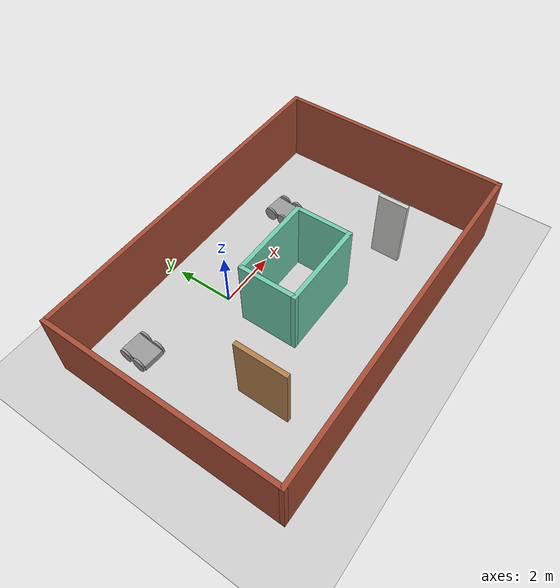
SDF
<sdf version="1.7">
 <world name="default">
  <plugin name="hello" filename="libhello.so"/>
  <light name="sun" type="directional">
   <pose>0 0 10 0 -0 0</pose>
   <diffuse>0.8 0.8 0.8 1</diffuse>
   <specular>0.2 0.2 0.2 1</specular>
   <attenuation>
    <range>1000</range>
    <constant>0.9</constant>
    <linear>0.01</linear>
    <quadratic>0.001</quadratic>
   </attenuation>
   <direction>-0.5 0.1 -0.9</direction>
   <spot><inner_angle>0</inner_angle><outer_angle>0</outer_angle><falloff>0</falloff></spot>
  </light>
  <model name="ground_plane">
   <static>1</static>
   <link name="link">
    <collision name="collision">
     <geometry><plane><normal>0 0 1</normal><size>100 100</size></plane></geometry>
     <surface>
      <contact><collide_bitmask>65535</collide_bitmask></contact>
      <friction><ode><mu>100</mu><mu2>50</mu2></ode></friction>
     </surface>
    </collision>
    <visual name="visual">
     <cast_shadows>0</cast_shadows>
     <geometry><plane><normal>0 0 1</normal><size>100 100</size></plane></geometry>
     <material>
      <script><uri>file://media/materials/scripts/gazebo.material</uri><name>Gazebo/Grey</name></script>
     </material>
    </visual>
   </link>
  </model>
  <gravity>0 0 -9.8</gravity>
  <magnetic_field>6e-06 2.3e-05 -4.2e-05</magnetic_field>
  <atmosphere type="adiabatic"/>
  <physics type="ode">
   <max_step_size>0.001</max_step_size>
   <real_time_factor>1</real_time_factor>
   <real_time_update_rate>1000</real_time_update_rate>
  </physics>
  <scene><ambient>0.4 0.4 0.4 1</ambient><background>0.7 0.7 0.7 1</background><shadows>1</shadows></scene>
  <spherical_coordinates>
   <surface_model>EARTH_WGS84</surface_model>
   <latitude_deg>0</latitude_deg>
   <longitude_deg>0</longitude_deg>
   <elevation>0</elevation>
   <heading_deg>0</heading_deg>
  </spherical_coordinates>
  <model name="Building">
   <link name="Wall_0">
    <pose>-0.02 -0.5525 0 0 -0 0</pose>
    <visual name="Wall_0_Visual">
     <pose>0 0 1.25 0 -0 0</pose>
     <geometry><box><size>3 0.15 2.5</size></box></geometry>
     <material>
      <script><uri>file://media/materials/scripts/gazebo.material</uri><name>Gazebo/Grey</name></script>
      <ambient>0.435294 0.796078 0.67451 1</ambient>
      <shader type="pixel"/>
     </material>
     <meta><layer>0</layer></meta>
    </visual>
    <collision name="Wall_0_Collision">
     <pose>0 0 1.25 0 -0 0</pose>
     <geometry><box><size>3 0.15 2.5</size></box></geometry>
     <surface>
      <friction>
       <ode><mu>1</mu><mu2>1</mu2><fdir1>0 0 0</fdir1><slip1>0</slip1><slip2>0</slip2></ode>
       <torsional>
        <coefficient>1</coefficient>
        <patch_radius>0</patch_radius>
        <surface_radius>0</surface_radius>
        <use_patch_radius>1</use_patch_radius>
        <ode><slip>0</slip></ode>
       </torsional>
      </friction>
      <bounce><restitution_coefficient>0</restitution_coefficient><threshold>1e+06</threshold></bounce>
      <contact>
       <collide_without_contact>0</collide_without_contact>
       <collide_without_contact_bitmask>1</collide_without_contact_bitmask>
       <collide_bitmask>1</collide_bitmask>
       <ode>
        <soft_cfm>0</soft_cfm>
        <soft_erp>0.2</soft_erp>
        <kp>1e+13</kp>
        <kd>1</kd>
        <max_vel>0.01</max_vel>
        <min_depth>0</min_depth>
       </ode>
       <bullet>
        <split_impulse>1</split_impulse>
        <split_impulse_penetration_threshold>-0.01</split_impulse_penetration_threshold>
        <soft_cfm>0</soft_cfm>
        <soft_erp>0.2</soft_erp>
        <kp>1e+13</kp>
        <kd>1</kd>
       </bullet>
      </contact>
     </surface>
    </collision>
   </link>
   <link name="Wall_1">
    <pose>1.405 -1.4775 0 0 0 -1.5708</pose>
    <visual name="Wall_1_Visual">
     <pose>0 0 1.25 0 -0 0</pose>
     <geometry><box><size>2 0.15 2.5</size></box></geometry>
     <material>
      <script><uri>file://media/materials/scripts/gazebo.material</uri><name>Gazebo/Grey</name></script>
      <ambient>0.435294 0.796078 0.67451 1</ambient>
      <shader type="pixel"/>
     </material>
     <meta><layer>0</layer></meta>
    </visual>
    <collision name="Wall_1_Collision">
     <pose>0 0 1.25 0 -0 0</pose>
     <geometry><box><size>2 0.15 2.5</size></box></geometry>
     <surface>
      <friction>
       <ode><mu>1</mu><mu2>1</mu2><fdir1>0 0 0</fdir1><slip1>0</slip1><slip2>0</slip2></ode>
       <torsional>
        <coefficient>1</coefficient>
        <patch_radius>0</patch_radius>
        <surface_radius>0</surface_radius>
        <use_patch_radius>1</use_patch_radius>
        <ode><slip>0</slip></ode>
       </torsional>
      </friction>
      <bounce><restitution_coefficient>0</restitution_coefficient><threshold>1e+06</threshold></bounce>
      <contact>
       <collide_without_contact>0</collide_without_contact>
       <collide_without_contact_bitmask>1</collide_without_contact_bitmask>
       <collide_bitmask>1</collide_bitmask>
       <ode>
        <soft_cfm>0</soft_cfm>
        <soft_erp>0.2</soft_erp>
        <kp>1e+13</kp>
        <kd>1</kd>
        <max_vel>0.01</max_vel>
        <min_depth>0</min_depth>
       </ode>
       <bullet>
        <split_impulse>1</split_impulse>
        <split_impulse_penetration_threshold>-0.01</split_impulse_penetration_threshold>
        <soft_cfm>0</soft_cfm>
        <soft_erp>0.2</soft_erp>
        <kp>1e+13</kp>
        <kd>1</kd>
       </bullet>
      </contact>
     </surface>
    </collision>
   </link>
   <link name="Wall_16">
    <pose>-3.555 -2.8225 0 0 0 -1.5708</pose>
    <visual name="Wall_16_Visual">
     <pose>0 0 1.25 0 -0 0</pose>
     <geometry><box><size>1.75 0.15 2.5</size></box></geometry>
     <material>
      <script><uri>file://media/materials/scripts/gazebo.material</uri><name>Gazebo/Wood</name></script>
      <ambient>1 1 1 1</ambient>
      <shader type="pixel"/>
     </material>
     <meta><layer>0</layer></meta>
    </visual>
    <collision name="Wall_16_Collision">
     <pose>0 0 1.25 0 -0 0</pose>
     <geometry><box><size>1.75 0.15 2.5</size></box></geometry>
     <surface>
      <friction>
       <ode><mu>1</mu><mu2>1</mu2><fdir1>0 0 0</fdir1><slip1>0</slip1><slip2>0</slip2></ode>
       <torsional>
        <coefficient>1</coefficient>
        <patch_radius>0</patch_radius>
        <surface_radius>0</surface_radius>
        <use_patch_radius>1</use_patch_radius>
        <ode><slip>0</slip></ode>
       </torsional>
      </friction>
      <bounce><restitution_coefficient>0</restitution_coefficient><threshold>1e+06</threshold></bounce>
      <contact>
       <collide_without_contact>0</collide_without_contact>
       <collide_without_contact_bitmask>1</collide_without_contact_bitmask>
       <collide_bitmask>1</collide_bitmask>
       <ode>
        <soft_cfm>0</soft_cfm>
        <soft_erp>0.2</soft_erp>
        <kp>1e+13</kp>
        <kd>1</kd>
        <max_vel>0.01</max_vel>
        <min_depth>0</min_depth>
       </ode>
       <bullet>
        <split_impulse>1</split_impulse>
        <split_impulse_penetration_threshold>-0.01</split_impulse_penetration_threshold>
        <soft_cfm>0</soft_cfm>
        <soft_erp>0.2</soft_erp>
        <kp>1e+13</kp>
        <kd>1</kd>
       </bullet>
      </contact>
     </surface>
    </collision>
   </link>
   <link name="Wall_2">
    <pose>-0.02 -2.4025 0 0 -0 3.14159</pose>
    <visual name="Wall_2_Visual">
     <pose>0 0 1.25 0 -0 0</pose>
     <geometry><box><size>3 0.15 2.5</size></box></geometry>
     <material>
      <script><uri>file://media/materials/scripts/gazebo.material</uri><name>Gazebo/Grey</name></script>
      <ambient>0.435294 0.796078 0.67451 1</ambient>
      <shader type="pixel"/>
     </material>
     <meta><layer>0</layer></meta>
    </visual>
    <collision name="Wall_2_Collision">
     <pose>0 0 1.25 0 -0 0</pose>
     <geometry><box><size>3 0.15 2.5</size></box></geometry>
     <surface>
      <friction>
       <ode><mu>1</mu><mu2>1</mu2><fdir1>0 0 0</fdir1><slip1>0</slip1><slip2>0</slip2></ode>
       <torsional>
        <coefficient>1</coefficient>
        <patch_radius>0</patch_radius>
        <surface_radius>0</surface_radius>
        <use_patch_radius>1</use_patch_radius>
        <ode><slip>0</slip></ode>
       </torsional>
      </friction>
      <bounce><restitution_coefficient>0</restitution_coefficient><threshold>1e+06</threshold></bounce>
      <contact>
       <collide_without_contact>0</collide_without_contact>
       <collide_without_contact_bitmask>1</collide_without_contact_bitmask>
       <collide_bitmask>1</collide_bitmask>
       <ode>
        <soft_cfm>0</soft_cfm>
        <soft_erp>0.2</soft_erp>
        <kp>1e+13</kp>
        <kd>1</kd>
        <max_vel>0.01</max_vel>
        <min_depth>0</min_depth>
       </ode>
       <bullet>
        <split_impulse>1</split_impulse>
        <split_impulse_penetration_threshold>-0.01</split_impulse_penetration_threshold>
        <soft_cfm>0</soft_cfm>
        <soft_erp>0.2</soft_erp>
        <kp>1e+13</kp>
        <kd>1</kd>
       </bullet>
      </contact>
     </surface>
    </collision>
   </link>
   <link name="Wall_29">
    <pose>3.355 -2.8275 0 0 0 -1.5708</pose>
    <visual name="Wall_29_Visual">
     <pose>0 0 1.25 0 -0 0</pose>
     <geometry><box><size>1 0.15 2.5</size></box></geometry>
     <material>
      <script><uri>file://media/materials/scripts/gazebo.material</uri><name>Gazebo/CeilingTiled</name></script>
      <ambient>1 1 1 1</ambient>
      <shader type="pixel"/>
     </material>
     <meta><layer>0</layer></meta>
    </visual>
    <collision name="Wall_29_Collision">
     <pose>0 0 1.25 0 -0 0</pose>
     <geometry><box><size>1 0.15 2.5</size></box></geometry>
     <surface>
      <friction>
       <ode><mu>1</mu><mu2>1</mu2><fdir1>0 0 0</fdir1><slip1>0</slip1><slip2>0</slip2></ode>
       <torsional>
        <coefficient>1</coefficient>
        <patch_radius>0</patch_radius>
        <surface_radius>0</surface_radius>
        <use_patch_radius>1</use_patch_radius>
        <ode><slip>0</slip></ode>
       </torsional>
      </friction>
      <bounce><restitution_coefficient>0</restitution_coefficient><threshold>1e+06</threshold></bounce>
      <contact>
       <collide_without_contact>0</collide_without_contact>
       <collide_without_contact_bitmask>1</collide_without_contact_bitmask>
       <collide_bitmask>1</collide_bitmask>
       <ode>
        <soft_cfm>0</soft_cfm>
        <soft_erp>0.2</soft_erp>
        <kp>1e+13</kp>
        <kd>1</kd>
        <max_vel>0.01</max_vel>
        <min_depth>0</min_depth>
       </ode>
       <bullet>
        <split_impulse>1</split_impulse>
        <split_impulse_penetration_threshold>-0.01</split_impulse_penetration_threshold>
        <soft_cfm>0</soft_cfm>
        <soft_erp>0.2</soft_erp>
        <kp>1e+13</kp>
        <kd>1</kd>
       </bullet>
      </contact>
     </surface>
    </collision>
   </link>
   <link name="Wall_3">
    <pose>-1.445 -1.4775 0 0 -0 1.5708</pose>
    <visual name="Wall_3_Visual">
     <pose>0 0 1.25 0 -0 0</pose>
     <geometry><box><size>2 0.15 2.5</size></box></geometry>
     <material>
      <script><uri>file://media/materials/scripts/gazebo.material</uri><name>Gazebo/Grey</name></script>
      <ambient>0.435294 0.796078 0.67451 1</ambient>
      <shader type="pixel"/>
     </material>
     <meta><layer>0</layer></meta>
    </visual>
    <collision name="Wall_3_Collision">
     <pose>0 0 1.25 0 -0 0</pose>
     <geometry><box><size>2 0.15 2.5</size></box></geometry>
     <surface>
      <friction>
       <ode><mu>1</mu><mu2>1</mu2><fdir1>0 0 0</fdir1><slip1>0</slip1><slip2>0</slip2></ode>
       <torsional>
        <coefficient>1</coefficient>
        <patch_radius>0</patch_radius>
        <surface_radius>0</surface_radius>
        <use_patch_radius>1</use_patch_radius>
        <ode><slip>0</slip></ode>
       </torsional>
      </friction>
      <bounce><restitution_coefficient>0</restitution_coefficient><threshold>1e+06</threshold></bounce>
      <contact>
       <collide_without_contact>0</collide_without_contact>
       <collide_without_contact_bitmask>1</collide_without_contact_bitmask>
       <collide_bitmask>1</collide_bitmask>
       <ode>
        <soft_cfm>0</soft_cfm>
        <soft_erp>0.2</soft_erp>
        <kp>1e+13</kp>
        <kd>1</kd>
        <max_vel>0.01</max_vel>
        <min_depth>0</min_depth>
       </ode>
       <bullet>
        <split_impulse>1</split_impulse>
        <split_impulse_penetration_threshold>-0.01</split_impulse_penetration_threshold>
        <soft_cfm>0</soft_cfm>
        <soft_erp>0.2</soft_erp>
        <kp>1e+13</kp>
        <kd>1</kd>
       </bullet>
      </contact>
     </surface>
    </collision>
   </link>
   <link name="Wall_5">
    <pose>0 2.6475 0 0 -0 0</pose>
    <visual name="Wall_5_Visual">
     <pose>0 0 1.25 0 -0 0</pose>
     <geometry><box><size>12 0.15 2.5</size></box></geometry>
     <material>
      <script><uri>file://media/materials/scripts/gazebo.material</uri><name>Gazebo/Bricks</name></script>
      <ambient>1 1 1 1</ambient>
      <shader type="pixel"/>
     </material>
     <meta><layer>0</layer></meta>
    </visual>
    <collision name="Wall_5_Collision">
     <pose>0 0 1.25 0 -0 0</pose>
     <geometry><box><size>12 0.15 2.5</size></box></geometry>
     <surface>
      <friction>
       <ode><mu>1</mu><mu2>1</mu2><fdir1>0 0 0</fdir1><slip1>0</slip1><slip2>0</slip2></ode>
       <torsional>
        <coefficient>1</coefficient>
        <patch_radius>0</patch_radius>
        <surface_radius>0</surface_radius>
        <use_patch_radius>1</use_patch_radius>
        <ode><slip>0</slip></ode>
       </torsional>
      </friction>
      <bounce><restitution_coefficient>0</restitution_coefficient><threshold>1e+06</threshold></bounce>
      <contact>
       <collide_without_contact>0</collide_without_contact>
       <collide_without_contact_bitmask>1</collide_without_contact_bitmask>
       <collide_bitmask>1</collide_bitmask>
       <ode>
        <soft_cfm>0</soft_cfm>
        <soft_erp>0.2</soft_erp>
        <kp>1e+13</kp>
        <kd>1</kd>
        <max_vel>0.01</max_vel>
        <min_depth>0</min_depth>
       </ode>
       <bullet>
        <split_impulse>1</split_impulse>
        <split_impulse_penetration_threshold>-0.01</split_impulse_penetration_threshold>
        <soft_cfm>0</soft_cfm>
        <soft_erp>0.2</soft_erp>
        <kp>1e+13</kp>
        <kd>1</kd>
       </bullet>
      </contact>
     </surface>
    </collision>
   </link>
   <link name="Wall_6">
    <pose>5.925 -1.2775 0 0 0 -1.5708</pose>
    <visual name="Wall_6_Visual">
     <pose>0 0 1.25 0 -0 0</pose>
     <geometry><box><size>8 0.15 2.5</size></box></geometry>
     <material>
      <script><uri>file://media/materials/scripts/gazebo.material</uri><name>Gazebo/Bricks</name></script>
      <ambient>1 1 1 1</ambient>
      <shader type="pixel"/>
     </material>
     <meta><layer>0</layer></meta>
    </visual>
    <collision name="Wall_6_Collision">
     <pose>0 0 1.25 0 -0 0</pose>
     <geometry><box><size>8 0.15 2.5</size></box></geometry>
     <surface>
      <friction>
       <ode><mu>1</mu><mu2>1</mu2><fdir1>0 0 0</fdir1><slip1>0</slip1><slip2>0</slip2></ode>
       <torsional>
        <coefficient>1</coefficient>
        <patch_radius>0</patch_radius>
        <surface_radius>0</surface_radius>
        <use_patch_radius>1</use_patch_radius>
        <ode><slip>0</slip></ode>
       </torsional>
      </friction>
      <bounce><restitution_coefficient>0</restitution_coefficient><threshold>1e+06</threshold></bounce>
      <contact>
       <collide_without_contact>0</collide_without_contact>
       <collide_without_contact_bitmask>1</collide_without_contact_bitmask>
       <collide_bitmask>1</collide_bitmask>
       <ode>
        <soft_cfm>0</soft_cfm>
        <soft_erp>0.2</soft_erp>
        <kp>1e+13</kp>
        <kd>1</kd>
        <max_vel>0.01</max_vel>
        <min_depth>0</min_depth>
       </ode>
       <bullet>
        <split_impulse>1</split_impulse>
        <split_impulse_penetration_threshold>-0.01</split_impulse_penetration_threshold>
        <soft_cfm>0</soft_cfm>
        <soft_erp>0.2</soft_erp>
        <kp>1e+13</kp>
        <kd>1</kd>
       </bullet>
      </contact>
     </surface>
    </collision>
   </link>
   <link name="Wall_7">
    <pose>0 -5.2025 0 0 -0 3.14159</pose>
    <visual name="Wall_7_Visual">
     <pose>0 0 1.25 0 -0 0</pose>
     <geometry><box><size>12 0.15 2.5</size></box></geometry>
     <material>
      <script><uri>file://media/materials/scripts/gazebo.material</uri><name>Gazebo/Bricks</name></script>
      <ambient>1 1 1 1</ambient>
      <shader type="pixel"/>
     </material>
     <meta><layer>0</layer></meta>
    </visual>
    <collision name="Wall_7_Collision">
     <pose>0 0 1.25 0 -0 0</pose>
     <geometry><box><size>12 0.15 2.5</size></box></geometry>
     <surface>
      <friction>
       <ode><mu>1</mu><mu2>1</mu2><fdir1>0 0 0</fdir1><slip1>0</slip1><slip2>0</slip2></ode>
       <torsional>
        <coefficient>1</coefficient>
        <patch_radius>0</patch_radius>
        <surface_radius>0</surface_radius>
        <use_patch_radius>1</use_patch_radius>
        <ode><slip>0</slip></ode>
       </torsional>
      </friction>
      <bounce><restitution_coefficient>0</restitution_coefficient><threshold>1e+06</threshold></bounce>
      <contact>
       <collide_without_contact>0</collide_without_contact>
       <collide_without_contact_bitmask>1</collide_without_contact_bitmask>
       <collide_bitmask>1</collide_bitmask>
       <ode>
        <soft_cfm>0</soft_cfm>
        <soft_erp>0.2</soft_erp>
        <kp>1e+13</kp>
        <kd>1</kd>
        <max_vel>0.01</max_vel>
        <min_depth>0</min_depth>
       </ode>
       <bullet>
        <split_impulse>1</split_impulse>
        <split_impulse_penetration_threshold>-0.01</split_impulse_penetration_threshold>
        <soft_cfm>0</soft_cfm>
        <soft_erp>0.2</soft_erp>
        <kp>1e+13</kp>
        <kd>1</kd>
       </bullet>
      </contact>
     </surface>
    </collision>
   </link>
   <link name="Wall_8">
    <pose>-5.925 -1.2775 0 0 -0 1.5708</pose>
    <visual name="Wall_8_Visual">
     <pose>0 0 1.25 0 -0 0</pose>
     <geometry><box><size>8 0.15 2.5</size></box></geometry>
     <material>
      <script><uri>file://media/materials/scripts/gazebo.material</uri><name>Gazebo/Bricks</name></script>
      <ambient>1 1 1 1</ambient>
      <shader type="pixel"/>
     </material>
     <meta><layer>0</layer></meta>
    </visual>
    <collision name="Wall_8_Collision">
     <pose>0 0 1.25 0 -0 0</pose>
     <geometry><box><size>8 0.15 2.5</size></box></geometry>
     <surface>
      <friction>
       <ode><mu>1</mu><mu2>1</mu2><fdir1>0 0 0</fdir1><slip1>0</slip1><slip2>0</slip2></ode>
       <torsional>
        <coefficient>1</coefficient>
        <patch_radius>0</patch_radius>
        <surface_radius>0</surface_radius>
        <use_patch_radius>1</use_patch_radius>
        <ode><slip>0</slip></ode>
       </torsional>
      </friction>
      <bounce><restitution_coefficient>0</restitution_coefficient><threshold>1e+06</threshold></bounce>
      <contact>
       <collide_without_contact>0</collide_without_contact>
       <collide_without_contact_bitmask>1</collide_without_contact_bitmask>
       <collide_bitmask>1</collide_bitmask>
       <ode>
        <soft_cfm>0</soft_cfm>
        <soft_erp>0.2</soft_erp>
        <kp>1e+13</kp>
        <kd>1</kd>
        <max_vel>0.01</max_vel>
        <min_depth>0</min_depth>
       </ode>
       <bullet>
        <split_impulse>1</split_impulse>
        <split_impulse_penetration_threshold>-0.01</split_impulse_penetration_threshold>
        <soft_cfm>0</soft_cfm>
        <soft_erp>0.2</soft_erp>
        <kp>1e+13</kp>
        <kd>1</kd>
       </bullet>
      </contact>
     </surface>
    </collision>
   </link>
   <static>1</static>
   <pose>1.23956 -0.307674 0 0 -0 0</pose>
  </model>
  <model name="chassis">
   <link name="link_0">
    <inertial>
     <mass>0.153815</mass>
     <inertia>
      <ixx>0.01355</ixx>
      <ixy>0</ixy>
      <ixz>0</ixz>
      <iyy>0.00700775</iyy>
      <iyz>0</iyz>
      <izz>0.0193573</izz>
     </inertia>
    </inertial>
    <pose>-0.268186 0.058658 0.5 0 -0 0</pose>
    <visual name="visual">
     <geometry><box><size>0.707029 1.00513 0.216393</size></box></geometry>
     <material>
      <lighting>1</lighting>
      <script><uri>file://media/materials/scripts/gazebo.material</uri><name>Gazebo/Grey</name></script>
      <shader type="pixel"/>
      <emissive>0 0 0 1</emissive>
     </material>
    </visual>
    <collision name="collision">
     <geometry><box><size>0.707029 1.00513 0.216393</size></box></geometry>
     <surface>
      <friction>
       <ode><mu>1</mu><mu2>1</mu2><fdir1>0 0 0</fdir1><slip1>0</slip1><slip2>0</slip2></ode>
       <torsional>
        <coefficient>1</coefficient>
        <patch_radius>0</patch_radius>
        <surface_radius>0</surface_radius>
        <use_patch_radius>1</use_patch_radius>
        <ode><slip>0</slip></ode>
       </torsional>
      </friction>
      <bounce><restitution_coefficient>0</restitution_coefficient><threshold>1e+06</threshold></bounce>
      <contact>
       <collide_without_contact>0</collide_without_contact>
       <collide_without_contact_bitmask>1</collide_without_contact_bitmask>
       <collide_bitmask>1</collide_bitmask>
       <ode>
        <soft_cfm>0</soft_cfm>
        <soft_erp>0.2</soft_erp>
        <kp>1e+13</kp>
        <kd>1</kd>
        <max_vel>0.01</max_vel>
        <min_depth>0</min_depth>
       </ode>
       <bullet>
        <split_impulse>1</split_impulse>
        <split_impulse_penetration_threshold>-0.01</split_impulse_penetration_threshold>
        <soft_cfm>0</soft_cfm>
        <soft_erp>0.2</soft_erp>
        <kp>1e+13</kp>
        <kd>1</kd>
       </bullet>
      </contact>
     </surface>
    </collision>
   </link>
   <link name="link_1">
    <inertial>
     <mass>0.0164306</mass>
     <inertia>
      <ixx>0.000232416</ixx>
      <ixy>0</ixy>
      <ixz>0</ixz>
      <iyy>0.000232416</iyy>
      <iyz>0</iyz>
      <izz>0.000449452</izz>
     </inertia>
    </inertial>
    <pose>-0.660097 -0.210006 0.516104 3.14159 -1.56685 3.14159</pose>
    <visual name="visual">
     <geometry><cylinder><radius>0.2339</radius><length>0.0749434</length></cylinder></geometry>
     <material>
      <lighting>1</lighting>
      <script><uri>file://media/materials/scripts/gazebo.material</uri><name>Gazebo/Grey</name></script>
      <shader type="pixel"/>
      <emissive>0 0 0 1</emissive>
     </material>
    </visual>
    <collision name="collision">
     <geometry><cylinder><radius>0.2339</radius><length>0.074943</length></cylinder></geometry>
     <surface>
      <friction>
       <ode><mu>1</mu><mu2>1</mu2><fdir1>0 0 0</fdir1><slip1>0</slip1><slip2>0</slip2></ode>
       <torsional>
        <coefficient>1</coefficient>
        <patch_radius>0</patch_radius>
        <surface_radius>0</surface_radius>
        <use_patch_radius>1</use_patch_radius>
        <ode><slip>0</slip></ode>
       </torsional>
      </friction>
      <bounce><restitution_coefficient>0</restitution_coefficient><threshold>1e+06</threshold></bounce>
      <contact>
       <collide_without_contact>0</collide_without_contact>
       <collide_without_contact_bitmask>1</collide_without_contact_bitmask>
       <collide_bitmask>1</collide_bitmask>
       <ode>
        <soft_cfm>0</soft_cfm>
        <soft_erp>0.2</soft_erp>
        <kp>1e+13</kp>
        <kd>1</kd>
        <max_vel>0.01</max_vel>
        <min_depth>0</min_depth>
       </ode>
       <bullet>
        <split_impulse>1</split_impulse>
        <split_impulse_penetration_threshold>-0.01</split_impulse_penetration_threshold>
        <soft_cfm>0</soft_cfm>
        <soft_erp>0.2</soft_erp>
        <kp>1e+13</kp>
        <kd>1</kd>
       </bullet>
      </contact>
     </surface>
    </collision>
   </link>
   <link name="link_1_clone">
    <inertial>
     <mass>0.0164306</mass>
     <inertia>
      <ixx>0.000232416</ixx>
      <ixy>0</ixy>
      <ixz>0</ixz>
      <iyy>0.000232416</iyy>
      <iyz>0</iyz>
      <izz>0.000449452</izz>
     </inertia>
    </inertial>
    <pose>0.123724 -0.210006 0.515902 3.14159 -1.56685 3.14159</pose>
    <visual name="visual">
     <geometry><cylinder><radius>0.2339</radius><length>0.0749434</length></cylinder></geometry>
     <material>
      <lighting>1</lighting>
      <script><uri>file://media/materials/scripts/gazebo.material</uri><name>Gazebo/Grey</name></script>
      <shader type="pixel"/>
      <emissive>0 0 0 1</emissive>
     </material>
    </visual>
    <collision name="collision">
     <geometry><cylinder><radius>0.2339</radius><length>0.074943</length></cylinder></geometry>
     <surface>
      <friction>
       <ode><mu>1</mu><mu2>1</mu2><fdir1>0 0 0</fdir1><slip1>0</slip1><slip2>0</slip2></ode>
       <torsional>
        <coefficient>1</coefficient>
        <patch_radius>0</patch_radius>
        <surface_radius>0</surface_radius>
        <use_patch_radius>1</use_patch_radius>
        <ode><slip>0</slip></ode>
       </torsional>
      </friction>
      <bounce><restitution_coefficient>0</restitution_coefficient><threshold>1e+06</threshold></bounce>
      <contact>
       <collide_without_contact>0</collide_without_contact>
       <collide_without_contact_bitmask>1</collide_without_contact_bitmask>
       <collide_bitmask>1</collide_bitmask>
       <ode>
        <soft_cfm>0</soft_cfm>
        <soft_erp>0.2</soft_erp>
        <kp>1e+13</kp>
        <kd>1</kd>
        <max_vel>0.01</max_vel>
        <min_depth>0</min_depth>
       </ode>
       <bullet>
        <split_impulse>1</split_impulse>
        <split_impulse_penetration_threshold>-0.01</split_impulse_penetration_threshold>
        <soft_cfm>0</soft_cfm>
        <soft_erp>0.2</soft_erp>
        <kp>1e+13</kp>
        <kd>1</kd>
       </bullet>
      </contact>
     </surface>
    </collision>
   </link>
   <link name="link_1_clone_clone">
    <inertial>
     <mass>0.0164306</mass>
     <inertia>
      <ixx>0.000232416</ixx>
      <ixy>0</ixy>
      <ixz>0</ixz>
      <iyy>0.000232416</iyy>
      <iyz>0</iyz>
      <izz>0.000449452</izz>
     </inertia>
    </inertial>
    <pose>0.123724 0.327323 0.515902 3.14159 -1.56685 3.14159</pose>
    <visual name="visual">
     <geometry><cylinder><radius>0.2339</radius><length>0.0749434</length></cylinder></geometry>
     <material>
      <lighting>1</lighting>
      <script><uri>file://media/materials/scripts/gazebo.material</uri><name>Gazebo/Grey</name></script>
      <shader type="pixel"/>
      <emissive>0 0 0 1</emissive>
     </material>
    </visual>
    <collision name="collision">
     <geometry><cylinder><radius>0.2339</radius><length>0.074943</length></cylinder></geometry>
     <surface>
      <friction>
       <ode><mu>1</mu><mu2>1</mu2><fdir1>0 0 0</fdir1><slip1>0</slip1><slip2>0</slip2></ode>
       <torsional>
        <coefficient>1</coefficient>
        <patch_radius>0</patch_radius>
        <surface_radius>0</surface_radius>
        <use_patch_radius>1</use_patch_radius>
        <ode><slip>0</slip></ode>
       </torsional>
      </friction>
      <bounce><restitution_coefficient>0</restitution_coefficient><threshold>1e+06</threshold></bounce>
      <contact>
       <collide_without_contact>0</collide_without_contact>
       <collide_without_contact_bitmask>1</collide_without_contact_bitmask>
       <collide_bitmask>1</collide_bitmask>
       <ode>
        <soft_cfm>0</soft_cfm>
        <soft_erp>0.2</soft_erp>
        <kp>1e+13</kp>
        <kd>1</kd>
        <max_vel>0.01</max_vel>
        <min_depth>0</min_depth>
       </ode>
       <bullet>
        <split_impulse>1</split_impulse>
        <split_impulse_penetration_threshold>-0.01</split_impulse_penetration_threshold>
        <soft_cfm>0</soft_cfm>
        <soft_erp>0.2</soft_erp>
        <kp>1e+13</kp>
        <kd>1</kd>
       </bullet>
      </contact>
     </surface>
    </collision>
   </link>
   <link name="link_1_clone_clone_0">
    <inertial>
     <mass>0.0164306</mass>
     <inertia>
      <ixx>0.00023242</ixx>
      <ixy>0</ixy>
      <ixz>0</ixz>
      <iyy>0.00023242</iyy>
      <iyz>0</iyz>
      <izz>0.00044945</izz>
     </inertia>
    </inertial>
    <pose>-0.660097 0.327323 0.515902 3.14159 -1.56685 3.14159</pose>
    <visual name="visual">
     <geometry><cylinder><radius>0.2339</radius><length>0.0749434</length></cylinder></geometry>
     <material>
      <lighting>1</lighting>
      <script><uri>file://media/materials/scripts/gazebo.material</uri><name>Gazebo/Grey</name></script>
      <shader type="pixel"><normal_map>__default__</normal_map></shader>
      <emissive>0 0 0 1</emissive>
     </material>
    </visual>
    <collision name="collision">
     <geometry><cylinder><radius>0.2339</radius><length>0.074943</length></cylinder></geometry>
     <surface>
      <friction>
       <ode><mu>1</mu><mu2>1</mu2><fdir1>0 0 0</fdir1><slip1>0</slip1><slip2>0</slip2></ode>
       <torsional>
        <coefficient>1</coefficient>
        <patch_radius>0</patch_radius>
        <surface_radius>0</surface_radius>
        <use_patch_radius>1</use_patch_radius>
        <ode><slip>0</slip></ode>
       </torsional>
      </friction>
      <bounce><restitution_coefficient>0</restitution_coefficient><threshold>1e+06</threshold></bounce>
      <contact>
       <collide_without_contact>0</collide_without_contact>
       <collide_without_contact_bitmask>1</collide_without_contact_bitmask>
       <collide_bitmask>1</collide_bitmask>
       <ode>
        <soft_cfm>0</soft_cfm>
        <soft_erp>0.2</soft_erp>
        <kp>1e+13</kp>
        <kd>1</kd>
        <max_vel>0.01</max_vel>
        <min_depth>0</min_depth>
       </ode>
       <bullet>
        <split_impulse>1</split_impulse>
        <split_impulse_penetration_threshold>-0.01</split_impulse_penetration_threshold>
        <soft_cfm>0</soft_cfm>
        <soft_erp>0.2</soft_erp>
        <kp>1e+13</kp>
        <kd>1</kd>
       </bullet>
      </contact>
     </surface>
    </collision>
   </link>
   <joint name="link_0_JOINT_0" type="revolute">
    <parent>link_0</parent>
    <child>link_1</child>
    <pose>0 0 0 -0.03 0 0</pose>
    <axis>
     <xyz>0 0 1</xyz>
     <limit>
      <lower>-1.79769e+308</lower>
      <upper>1.79769e+308</upper>
      <effort>-1</effort>
      <velocity>-1</velocity>
     </limit>
     <dynamics>
      <spring_reference>0</spring_reference>
      <spring_stiffness>0</spring_stiffness>
      <damping>0</damping>
      <friction>0</friction>
     </dynamics>
    </axis>
    <physics>
     <ode><limit><cfm>0</cfm><erp>0.2</erp></limit><suspension><cfm>0</cfm><erp>0.2</erp></suspension></ode>
    </physics>
   </joint>
   <joint name="link_0_JOINT_1" type="revolute">
    <parent>link_0</parent>
    <child>link_1_clone</child>
    <axis>
     <xyz>0 0 1</xyz>
     <limit>
      <lower>-1.79769e+308</lower>
      <upper>1.79769e+308</upper>
      <effort>-1</effort>
      <velocity>-1</velocity>
     </limit>
     <dynamics>
      <spring_reference>0</spring_reference>
      <spring_stiffness>0</spring_stiffness>
      <damping>0</damping>
      <friction>0</friction>
     </dynamics>
    </axis>
    <physics>
     <ode><limit><cfm>0</cfm><erp>0.2</erp></limit><suspension><cfm>0</cfm><erp>0.2</erp></suspension></ode>
    </physics>
   </joint>
   <joint name="link_0_JOINT_3" type="revolute">
    <parent>link_0</parent>
    <child>link_1_clone_clone</child>
    <axis>
     <xyz>0 0 1</xyz>
     <limit>
      <lower>-1.79769e+308</lower>
      <upper>1.79769e+308</upper>
      <effort>-1</effort>
      <velocity>-1</velocity>
     </limit>
     <dynamics>
      <spring_reference>0</spring_reference>
      <spring_stiffness>0</spring_stiffness>
      <damping>0</damping>
      <friction>0</friction>
     </dynamics>
    </axis>
    <physics>
     <ode><limit><cfm>0</cfm><erp>0.2</erp></limit><suspension><cfm>0</cfm><erp>0.2</erp></suspension></ode>
    </physics>
   </joint>
   <joint name="link_0_JOINT_4" type="revolute">
    <parent>link_0</parent>
    <child>link_1_clone_clone_0</child>
    <axis>
     <xyz>0 0 1</xyz>
     <limit>
      <lower>-1.79769e+308</lower>
      <upper>1.79769e+308</upper>
      <effort>-1</effort>
      <velocity>-1</velocity>
     </limit>
     <dynamics>
      <spring_reference>0</spring_reference>
      <spring_stiffness>0</spring_stiffness>
      <damping>0</damping>
      <friction>0</friction>
     </dynamics>
    </axis>
    <physics>
     <ode><limit><cfm>0</cfm><erp>0.2</erp></limit><suspension><cfm>0</cfm><erp>0.2</erp></suspension></ode>
    </physics>
   </joint>
   <static>0</static>
   <pose>-2.83063 0.724403 -0.281856 0 0 -0.064729</pose>
  </model>
  <model name="chassis_0">
   <link name="link_0">
    <inertial>
     <mass>0.153815</mass>
     <inertia>
      <ixx>0.01355</ixx>
      <ixy>0</ixy>
      <ixz>0</ixz>
      <iyy>0.00700775</iyy>
      <iyz>0</iyz>
      <izz>0.0193573</izz>
     </inertia>
    </inertial>
    <pose>-0.268186 0.058658 0.5 0 -0 0</pose>
    <visual name="visual">
     <geometry><box><size>0.707029 1.00513 0.216393</size></box></geometry>
     <material>
      <lighting>1</lighting>
      <script><uri>file://media/materials/scripts/gazebo.material</uri><name>Gazebo/Grey</name></script>
      <shader type="pixel"/>
      <emissive>0 0 0 1</emissive>
     </material>
    </visual>
    <collision name="collision">
     <geometry><box><size>0.707029 1.00513 0.216393</size></box></geometry>
     <surface>
      <friction>
       <ode><mu>1</mu><mu2>1</mu2><fdir1>0 0 0</fdir1><slip1>0</slip1><slip2>0</slip2></ode>
       <torsional>
        <coefficient>1</coefficient>
        <patch_radius>0</patch_radius>
        <surface_radius>0</surface_radius>
        <use_patch_radius>1</use_patch_radius>
        <ode><slip>0</slip></ode>
       </torsional>
      </friction>
      <bounce><restitution_coefficient>0</restitution_coefficient><threshold>1e+06</threshold></bounce>
      <contact>
       <collide_without_contact>0</collide_without_contact>
       <collide_without_contact_bitmask>1</collide_without_contact_bitmask>
       <collide_bitmask>1</collide_bitmask>
       <ode>
        <soft_cfm>0</soft_cfm>
        <soft_erp>0.2</soft_erp>
        <kp>1e+13</kp>
        <kd>1</kd>
        <max_vel>0.01</max_vel>
        <min_depth>0</min_depth>
       </ode>
       <bullet>
        <split_impulse>1</split_impulse>
        <split_impulse_penetration_threshold>-0.01</split_impulse_penetration_threshold>
        <soft_cfm>0</soft_cfm>
        <soft_erp>0.2</soft_erp>
        <kp>1e+13</kp>
        <kd>1</kd>
       </bullet>
      </contact>
     </surface>
    </collision>
   </link>
   <link name="link_1">
    <inertial>
     <mass>0.0164306</mass>
     <inertia>
      <ixx>0.000232416</ixx>
      <ixy>0</ixy>
      <ixz>0</ixz>
      <iyy>0.000232416</iyy>
      <iyz>0</iyz>
      <izz>0.000449452</izz>
     </inertia>
    </inertial>
    <pose>-0.660097 -0.210006 0.516104 3.14159 -1.56685 3.14159</pose>
    <visual name="visual">
     <geometry><cylinder><radius>0.2339</radius><length>0.0749434</length></cylinder></geometry>
     <material>
      <lighting>1</lighting>
      <script><uri>file://media/materials/scripts/gazebo.material</uri><name>Gazebo/Grey</name></script>
      <shader type="pixel"/>
      <emissive>0 0 0 1</emissive>
     </material>
    </visual>
    <collision name="collision">
     <geometry><cylinder><radius>0.2339</radius><length>0.074943</length></cylinder></geometry>
     <surface>
      <friction>
       <ode><mu>1</mu><mu2>1</mu2><fdir1>0 0 0</fdir1><slip1>0</slip1><slip2>0</slip2></ode>
       <torsional>
        <coefficient>1</coefficient>
        <patch_radius>0</patch_radius>
        <surface_radius>0</surface_radius>
        <use_patch_radius>1</use_patch_radius>
        <ode><slip>0</slip></ode>
       </torsional>
      </friction>
      <bounce><restitution_coefficient>0</restitution_coefficient><threshold>1e+06</threshold></bounce>
      <contact>
       <collide_without_contact>0</collide_without_contact>
       <collide_without_contact_bitmask>1</collide_without_contact_bitmask>
       <collide_bitmask>1</collide_bitmask>
       <ode>
        <soft_cfm>0</soft_cfm>
        <soft_erp>0.2</soft_erp>
        <kp>1e+13</kp>
        <kd>1</kd>
        <max_vel>0.01</max_vel>
        <min_depth>0</min_depth>
       </ode>
       <bullet>
        <split_impulse>1</split_impulse>
        <split_impulse_penetration_threshold>-0.01</split_impulse_penetration_threshold>
        <soft_cfm>0</soft_cfm>
        <soft_erp>0.2</soft_erp>
        <kp>1e+13</kp>
        <kd>1</kd>
       </bullet>
      </contact>
     </surface>
    </collision>
   </link>
   <link name="link_1_clone">
    <inertial>
     <mass>0.0164306</mass>
     <inertia>
      <ixx>0.000232416</ixx>
      <ixy>0</ixy>
      <ixz>0</ixz>
      <iyy>0.000232416</iyy>
      <iyz>0</iyz>
      <izz>0.000449452</izz>
     </inertia>
    </inertial>
    <pose>0.123724 -0.210006 0.515902 3.14159 -1.56685 3.14159</pose>
    <visual name="visual">
     <geometry><cylinder><radius>0.2339</radius><length>0.0749434</length></cylinder></geometry>
     <material>
      <lighting>1</lighting>
      <script><uri>file://media/materials/scripts/gazebo.material</uri><name>Gazebo/Grey</name></script>
      <shader type="pixel"/>
      <emissive>0 0 0 1</emissive>
     </material>
    </visual>
    <collision name="collision">
     <geometry><cylinder><radius>0.2339</radius><length>0.074943</length></cylinder></geometry>
     <surface>
      <friction>
       <ode><mu>1</mu><mu2>1</mu2><fdir1>0 0 0</fdir1><slip1>0</slip1><slip2>0</slip2></ode>
       <torsional>
        <coefficient>1</coefficient>
        <patch_radius>0</patch_radius>
        <surface_radius>0</surface_radius>
        <use_patch_radius>1</use_patch_radius>
        <ode><slip>0</slip></ode>
       </torsional>
      </friction>
      <bounce><restitution_coefficient>0</restitution_coefficient><threshold>1e+06</threshold></bounce>
      <contact>
       <collide_without_contact>0</collide_without_contact>
       <collide_without_contact_bitmask>1</collide_without_contact_bitmask>
       <collide_bitmask>1</collide_bitmask>
       <ode>
        <soft_cfm>0</soft_cfm>
        <soft_erp>0.2</soft_erp>
        <kp>1e+13</kp>
        <kd>1</kd>
        <max_vel>0.01</max_vel>
        <min_depth>0</min_depth>
       </ode>
       <bullet>
        <split_impulse>1</split_impulse>
        <split_impulse_penetration_threshold>-0.01</split_impulse_penetration_threshold>
        <soft_cfm>0</soft_cfm>
        <soft_erp>0.2</soft_erp>
        <kp>1e+13</kp>
        <kd>1</kd>
       </bullet>
      </contact>
     </surface>
    </collision>
   </link>
   <link name="link_1_clone_clone">
    <inertial>
     <mass>0.0164306</mass>
     <inertia>
      <ixx>0.000232416</ixx>
      <ixy>0</ixy>
      <ixz>0</ixz>
      <iyy>0.000232416</iyy>
      <iyz>0</iyz>
      <izz>0.000449452</izz>
     </inertia>
    </inertial>
    <pose>0.123724 0.327323 0.515902 3.14159 -1.56685 3.14159</pose>
    <visual name="visual">
     <geometry><cylinder><radius>0.2339</radius><length>0.0749434</length></cylinder></geometry>
     <material>
      <lighting>1</lighting>
      <script><uri>file://media/materials/scripts/gazebo.material</uri><name>Gazebo/Grey</name></script>
      <shader type="pixel"/>
      <emissive>0 0 0 1</emissive>
     </material>
    </visual>
    <collision name="collision">
     <geometry><cylinder><radius>0.2339</radius><length>0.074943</length></cylinder></geometry>
     <surface>
      <friction>
       <ode><mu>1</mu><mu2>1</mu2><fdir1>0 0 0</fdir1><slip1>0</slip1><slip2>0</slip2></ode>
       <torsional>
        <coefficient>1</coefficient>
        <patch_radius>0</patch_radius>
        <surface_radius>0</surface_radius>
        <use_patch_radius>1</use_patch_radius>
        <ode><slip>0</slip></ode>
       </torsional>
      </friction>
      <bounce><restitution_coefficient>0</restitution_coefficient><threshold>1e+06</threshold></bounce>
      <contact>
       <collide_without_contact>0</collide_without_contact>
       <collide_without_contact_bitmask>1</collide_without_contact_bitmask>
       <collide_bitmask>1</collide_bitmask>
       <ode>
        <soft_cfm>0</soft_cfm>
        <soft_erp>0.2</soft_erp>
        <kp>1e+13</kp>
        <kd>1</kd>
        <max_vel>0.01</max_vel>
        <min_depth>0</min_depth>
       </ode>
       <bullet>
        <split_impulse>1</split_impulse>
        <split_impulse_penetration_threshold>-0.01</split_impulse_penetration_threshold>
        <soft_cfm>0</soft_cfm>
        <soft_erp>0.2</soft_erp>
        <kp>1e+13</kp>
        <kd>1</kd>
       </bullet>
      </contact>
     </surface>
    </collision>
   </link>
   <link name="link_1_clone_clone_0">
    <inertial>
     <mass>0.0164306</mass>
     <inertia>
      <ixx>0.00023242</ixx>
      <ixy>0</ixy>
      <ixz>0</ixz>
      <iyy>0.00023242</iyy>
      <iyz>0</iyz>
      <izz>0.00044945</izz>
     </inertia>
    </inertial>
    <pose>-0.660097 0.327323 0.515902 3.14159 -1.56685 3.14159</pose>
    <visual name="visual">
     <geometry><cylinder><radius>0.2339</radius><length>0.0749434</length></cylinder></geometry>
     <material>
      <lighting>1</lighting>
      <script><uri>file://media/materials/scripts/gazebo.material</uri><name>Gazebo/Grey</name></script>
      <shader type="pixel"><normal_map>__default__</normal_map></shader>
      <emissive>0 0 0 1</emissive>
     </material>
    </visual>
    <collision name="collision">
     <geometry><cylinder><radius>0.2339</radius><length>0.074943</length></cylinder></geometry>
     <surface>
      <friction>
       <ode><mu>1</mu><mu2>1</mu2><fdir1>0 0 0</fdir1><slip1>0</slip1><slip2>0</slip2></ode>
       <torsional>
        <coefficient>1</coefficient>
        <patch_radius>0</patch_radius>
        <surface_radius>0</surface_radius>
        <use_patch_radius>1</use_patch_radius>
        <ode><slip>0</slip></ode>
       </torsional>
      </friction>
      <bounce><restitution_coefficient>0</restitution_coefficient><threshold>1e+06</threshold></bounce>
      <contact>
       <collide_without_contact>0</collide_without_contact>
       <collide_without_contact_bitmask>1</collide_without_contact_bitmask>
       <collide_bitmask>1</collide_bitmask>
       <ode>
        <soft_cfm>0</soft_cfm>
        <soft_erp>0.2</soft_erp>
        <kp>1e+13</kp>
        <kd>1</kd>
        <max_vel>0.01</max_vel>
        <min_depth>0</min_depth>
       </ode>
       <bullet>
        <split_impulse>1</split_impulse>
        <split_impulse_penetration_threshold>-0.01</split_impulse_penetration_threshold>
        <soft_cfm>0</soft_cfm>
        <soft_erp>0.2</soft_erp>
        <kp>1e+13</kp>
        <kd>1</kd>
       </bullet>
      </contact>
     </surface>
    </collision>
   </link>
   <joint name="link_0_JOINT_0" type="revolute">
    <parent>link_0</parent>
    <child>link_1</child>
    <pose>0 0 0 -0.03 0 0</pose>
    <axis>
     <xyz>0 0 1</xyz>
     <limit>
      <lower>-1.79769e+308</lower>
      <upper>1.79769e+308</upper>
      <effort>-1</effort>
      <velocity>-1</velocity>
     </limit>
     <dynamics>
      <spring_reference>0</spring_reference>
      <spring_stiffness>0</spring_stiffness>
      <damping>0</damping>
      <friction>0</friction>
     </dynamics>
    </axis>
    <physics>
     <ode><limit><cfm>0</cfm><erp>0.2</erp></limit><suspension><cfm>0</cfm><erp>0.2</erp></suspension></ode>
    </physics>
   </joint>
   <joint name="link_0_JOINT_1" type="revolute">
    <parent>link_0</parent>
    <child>link_1_clone</child>
    <axis>
     <xyz>0 0 1</xyz>
     <limit>
      <lower>-1.79769e+308</lower>
      <upper>1.79769e+308</upper>
      <effort>-1</effort>
      <velocity>-1</velocity>
     </limit>
     <dynamics>
      <spring_reference>0</spring_reference>
      <spring_stiffness>0</spring_stiffness>
      <damping>0</damping>
      <friction>0</friction>
     </dynamics>
    </axis>
    <physics>
     <ode><limit><cfm>0</cfm><erp>0.2</erp></limit><suspension><cfm>0</cfm><erp>0.2</erp></suspension></ode>
    </physics>
   </joint>
   <joint name="link_0_JOINT_3" type="revolute">
    <parent>link_0</parent>
    <child>link_1_clone_clone</child>
    <axis>
     <xyz>0 0 1</xyz>
     <limit>
      <lower>-1.79769e+308</lower>
      <upper>1.79769e+308</upper>
      <effort>-1</effort>
      <velocity>-1</velocity>
     </limit>
     <dynamics>
      <spring_reference>0</spring_reference>
      <spring_stiffness>0</spring_stiffness>
      <damping>0</damping>
      <friction>0</friction>
     </dynamics>
    </axis>
    <physics>
     <ode><limit><cfm>0</cfm><erp>0.2</erp></limit><suspension><cfm>0</cfm><erp>0.2</erp></suspension></ode>
    </physics>
   </joint>
   <joint name="link_0_JOINT_4" type="revolute">
    <parent>link_0</parent>
    <child>link_1_clone_clone_0</child>
    <axis>
     <xyz>0 0 1</xyz>
     <limit>
      <lower>-1.79769e+308</lower>
      <upper>1.79769e+308</upper>
      <effort>-1</effort>
      <velocity>-1</velocity>
     </limit>
     <dynamics>
      <spring_reference>0</spring_reference>
      <spring_stiffness>0</spring_stiffness>
      <damping>0</damping>
      <friction>0</friction>
     </dynamics>
    </axis>
    <physics>
     <ode><limit><cfm>0</cfm><erp>0.2</erp></limit><suspension><cfm>0</cfm><erp>0.2</erp></suspension></ode>
    </physics>
   </joint>
   <static>0</static>
   <pose>4.33589 0.622528 -0.28187 1.2e-05 1.4e-05 -0.064876</pose>
  </model>
 </world>
</sdf>
